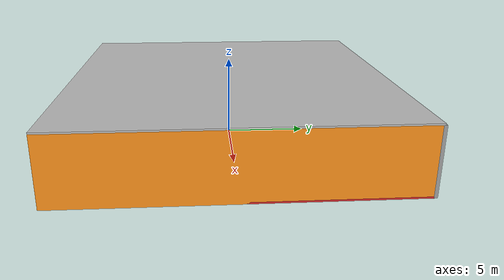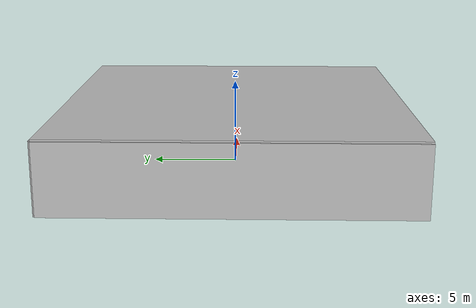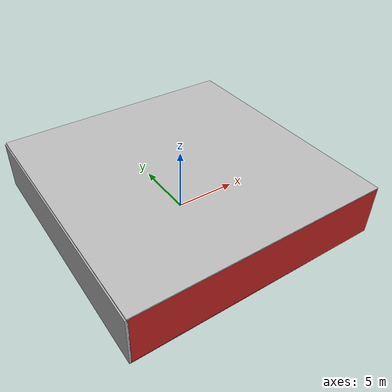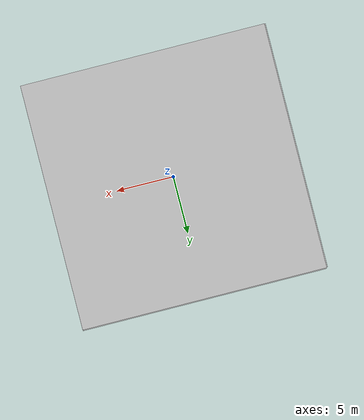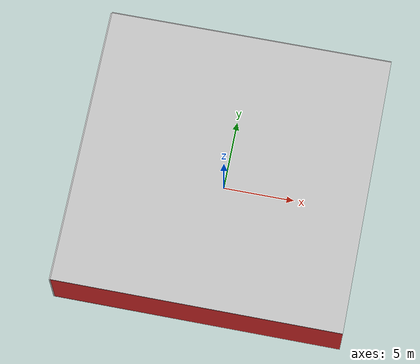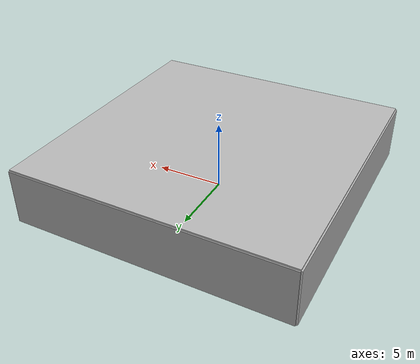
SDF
<sdf version="1.4">
 <world name="default">
  <physics type="ode">
   <max_step_size>0.001</max_step_size>
   <real_time_factor>1</real_time_factor>
   <real_time_update_rate>1000</real_time_update_rate>
   <gravity>0 0 -9.8</gravity>
  </physics>
  <scene><ambient>0.4 0.4 0.4 1</ambient><background>0.7 0.7 0.7 1</background><shadows>1</shadows></scene>
  <model name="Surrounding">
   <static>1</static>
   <link name="Ceiling">
    <collision name="Ceiling_Collision"><geometry><box><size>20 20 0.1</size></box></geometry></collision>
    <visual name="Ceiling_Visual">
     <geometry><box><size>20 20 0.1</size></box></geometry>
     <material>
      <script><uri>file://media/materials/scripts/gazebo.material</uri><name>Gazebo/LightOn</name></script>
     </material>
    </visual>
    <pose>0 0 4.05 0 0 0</pose>
   </link>
   <link name="Wall_South">
    <collision name="Wall_South_Collision">
     <geometry><box><size>20 0 4</size></box></geometry>
     <pose>0 0 2 0 -0 0</pose>
    </collision>
    <visual name="Wall_South_Visual">
     <pose>0 0 2 0 -0 0</pose>
     <geometry><box><size>20 0 4</size></box></geometry>
     <material>
      <script><uri>file://media/materials/scripts/gazebo.material</uri><name>Gazebo/Red</name></script>
     </material>
    </visual>
    <velocity_decay><linear>0</linear><angular>0</angular></velocity_decay>
    <pose>0 -10 0 0 -0 0</pose>
   </link>
   <link name="Wall_East">
    <collision name="Wall_21_Collision">
     <geometry><box><size>20 0 4</size></box></geometry>
     <pose>0 0 2 0 -0 0</pose>
    </collision>
    <visual name="Wall_21_Visual">
     <pose>0 0 2 0 -0 0</pose>
     <geometry><box><size>20 0 4</size></box></geometry>
     <material>
      <script><uri>file://media/materials/scripts/gazebo.material</uri><name>Gazebo/Orange</name></script>
     </material>
    </visual>
    <velocity_decay><linear>0</linear><angular>0</angular></velocity_decay>
    <pose>10 0 0 0 -0 1.5708</pose>
   </link>
   <link name="Wall_North">
    <collision name="Wall_22_Collision">
     <geometry><box><size>20 0.2 4</size></box></geometry>
     <pose>0 0 2 0 -0 0</pose>
    </collision>
    <visual name="Wall_22_Visual">
     <pose>0 0 2 0 -0 0</pose>
     <geometry><box><size>20 0.2 4</size></box></geometry>
     <material>
      <script><uri>file://media/materials/scripts/gazebo.material</uri><name>Gazebo/Grey</name></script>
     </material>
    </visual>
    <velocity_decay><linear>0</linear><angular>0</angular></velocity_decay>
    <pose>0 10 0 0 -0 0</pose>
   </link>
   <link name="Wall_West">
    <collision name="Wall_23_Collision">
     <geometry><box><size>20 0.2 4</size></box></geometry>
     <pose>0 0 2 0 -0 0</pose>
    </collision>
    <visual name="Wall_23_Visual">
     <pose>0 0 2 0 -0 0</pose>
     <geometry><box><size>20 0.2 4</size></box></geometry>
     <material>
      <script><uri>file://media/materials/scripts/gazebo.material</uri><name>Gazebo/LightOn</name></script>
     </material>
    </visual>
    <velocity_decay><linear>0</linear><angular>0</angular></velocity_decay>
    <pose>-10 0 0 0 0 -1.5708</pose>
   </link>
   <link name="Ground_link">
    <collision name="collision">
     <pose>0 0 .05 0 -0 0</pose>
     <geometry><box><size>20 20 0.1</size></box></geometry>
    </collision>
    <visual name="visual">
     <pose>0 0 .05 0 -0 0</pose>
     <geometry><box><size>20 20 0.1</size></box></geometry>
     <material>
      <script><uri>file://media/materials/scripts/gazebo.material</uri><name>Gazebo/RedGlow</name></script>
     </material>
    </visual>
   </link>
   <static>1</static>
  </model>
  <spherical_coordinates>
   <surface_model>EARTH_WGS84</surface_model>
   <latitude_deg>0</latitude_deg>
   <longitude_deg>0</longitude_deg>
   <elevation>0</elevation>
   <heading_deg>0</heading_deg>
  </spherical_coordinates>
  <light name="lightball_0" type="diffuse">
   <diffuse>0.8 0.8 0.8 1</diffuse>
   <specular>0.2 0.2 0.2 1</specular>
   <attenuation>
    <range>100</range>
    <constant>0.7</constant>
    <linear>0.01</linear>
    <quadratic>0.001</quadratic>
   </attenuation>
   <direction>-0.5 0.1 -0.9</direction>
   <pose>5.10927194945 -7.75740548724 3.68898118029 0 0 0</pose>
  </light>
  <light name="lightball_1" type="diffuse">
   <diffuse>0.8 0.8 0.8 1</diffuse>
   <specular>0.2 0.2 0.2 1</specular>
   <attenuation>
    <range>100</range>
    <constant>0.7</constant>
    <linear>0.01</linear>
    <quadratic>0.001</quadratic>
   </attenuation>
   <direction>-0.5 0.1 -0.9</direction>
   <pose>6.98634027783 0.476951416857 3.02769578444 0 0 0</pose>
  </light>
  <light name="lightball_2" type="diffuse">
   <diffuse>0.8 0.8 0.8 1</diffuse>
   <specular>0.2 0.2 0.2 1</specular>
   <attenuation>
    <range>100</range>
    <constant>0.7</constant>
    <linear>0.01</linear>
    <quadratic>0.001</quadratic>
   </attenuation>
   <direction>-0.5 0.1 -0.9</direction>
   <pose>-9.87593311672 2.6676592323 0.751322699709 0 0 0</pose>
  </light>
  <light name="lightball_3" type="diffuse">
   <diffuse>0.8 0.8 0.8 1</diffuse>
   <specular>0.2 0.2 0.2 1</specular>
   <attenuation>
    <range>100</range>
    <constant>0.7</constant>
    <linear>0.01</linear>
    <quadratic>0.001</quadratic>
   </attenuation>
   <direction>-0.5 0.1 -0.9</direction>
   <pose>-4.86269471952 1.7562759766 3.65999648719 0 0 0</pose>
  </light>
  <light name="lightball_4" type="diffuse">
   <diffuse>0.8 0.8 0.8 1</diffuse>
   <specular>0.2 0.2 0.2 1</specular>
   <attenuation>
    <range>100</range>
    <constant>0.7</constant>
    <linear>0.01</linear>
    <quadratic>0.001</quadratic>
   </attenuation>
   <direction>-0.5 0.1 -0.9</direction>
   <pose>-5.27172104605 8.59719815751 1.40184834599 0 0 0</pose>
  </light>
  <light name="lightball_5" type="diffuse">
   <diffuse>0.8 0.8 0.8 1</diffuse>
   <specular>0.2 0.2 0.2 1</specular>
   <attenuation>
    <range>100</range>
    <constant>0.7</constant>
    <linear>0.01</linear>
    <quadratic>0.001</quadratic>
   </attenuation>
   <direction>-0.5 0.1 -0.9</direction>
   <pose>5.27387247187 6.8887592334 0.758737745735 0 0 0</pose>
  </light>
  <light name="lightball_6" type="diffuse">
   <diffuse>0.8 0.8 0.8 1</diffuse>
   <specular>0.2 0.2 0.2 1</specular>
   <attenuation>
    <range>100</range>
    <constant>0.7</constant>
    <linear>0.01</linear>
    <quadratic>0.001</quadratic>
   </attenuation>
   <direction>-0.5 0.1 -0.9</direction>
   <pose>-5.07042704675 0.561862707396 1.87985729875 0 0 0</pose>
  </light>
  <light name="lightball_7" type="diffuse">
   <diffuse>0.8 0.8 0.8 1</diffuse>
   <specular>0.2 0.2 0.2 1</specular>
   <attenuation>
    <range>100</range>
    <constant>0.7</constant>
    <linear>0.01</linear>
    <quadratic>0.001</quadratic>
   </attenuation>
   <direction>-0.5 0.1 -0.9</direction>
   <pose>-8.17996458311 -0.584195672436 1.34465743659 0 0 0</pose>
  </light>
  <light name="lightball_8" type="diffuse">
   <diffuse>0.8 0.8 0.8 1</diffuse>
   <specular>0.2 0.2 0.2 1</specular>
   <attenuation>
    <range>100</range>
    <constant>0.7</constant>
    <linear>0.01</linear>
    <quadratic>0.001</quadratic>
   </attenuation>
   <direction>-0.5 0.1 -0.9</direction>
   <pose>-9.29921053376 8.17778726686 2.1797696656 0 0 0</pose>
  </light>
  <light name="lightball_9" type="diffuse">
   <diffuse>0.8 0.8 0.8 1</diffuse>
   <specular>0.2 0.2 0.2 1</specular>
   <attenuation>
    <range>100</range>
    <constant>0.7</constant>
    <linear>0.01</linear>
    <quadratic>0.001</quadratic>
   </attenuation>
   <direction>-0.5 0.1 -0.9</direction>
   <pose>2.57540998146 2.50886626501 1.13648175656 0 0 0</pose>
  </light>
  <include><uri>model://cabinet</uri><pose>4.63477816831 1.21381853826 0 0 0 0.543054679405</pose></include>
 </world>
</sdf>

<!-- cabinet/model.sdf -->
<sdf version="1.5">
  <model name="cabinet">
    <static>true</static>
    <link name="cabinet_bottom_plate">
      <inertial>
        <pose>0 0 -1 0 0 0</pose>
        <inertia>
          <ixx>2.050000</ixx>
          <ixy>0</ixy>
          <ixz>0</ixz>
          <iyy>2.050000</iyy>
          <iyz>0</iyz>
          <izz>2.050000</izz>
        </inertia>
        <mass>25.000000</mass>
      </inertial>
      <collision name="cabinet_bottom_plate_geom">
        <pose>0 0 0.010000 0 0 0</pose>
        <geometry>
          <box>
            <size>0.450000 0.450000 0.020000</size>
          </box>
        </geometry>
      </collision>
      <visual name="cabinet_bottom_plate_geom_visual">
        <pose>0 0 0.010000 0 0 0</pose>
        <geometry>
          <box>
            <size>0.450000 0.450000 0.020000</size>
          </box>
        </geometry>
        <material>
          <script>
            <uri>model://media/materials/scripts/gazebo.material</uri>
            <name>Gazebo/Wood</name>
          </script>
        </material>
      </visual>
      <collision name="cabinet_bottom_plate_geom_cabinet_back_plate">
        <pose>0.235000 0 0.510000 0 0 0</pose>
        <geometry>
          <box>
            <size>0.020000 0.450000 1.020000</size>
          </box>
        </geometry>
      </collision>
      <visual name="cabinet_bottom_plate_geom_cabinet_back_plate_visual">
        <pose>0.235000 0 0.510000 0 0 0</pose>
        <geometry>
          <box>
            <size>0.020000 0.450000 1.020000</size>
          </box>
        </geometry>
        <material>
          <script>
            <uri>model://media/materials/scripts/gazebo.material</uri>
            <name>Gazebo/Wood</name>
          </script>
        </material>
      </visual>
      <collision name="cabinet_bottom_plate_geom_cabinet_left_plate">
        <pose>0 0.235000 0.510000 0 0 0</pose>
        <geometry>
          <box>
            <size>0.450000 0.020000 1.020000</size>
          </box>
        </geometry>
      </collision>
      <visual name="cabinet_bottom_plate_geom_cabinet_left_plate_visual">
        <pose>0 0.235000 0.510000 0 0 0</pose>
        <geometry>
          <box>
            <size>0.450000 0.020000 1.020000</size>
          </box>
        </geometry>
        <material>
          <script>
            <uri>model://media/materials/scripts/gazebo.material</uri>
            <name>Gazebo/Wood</name>
          </script>
        </material>
      </visual>
      <collision name="cabinet_bottom_plate_geom_cabinet_middle_plate">
        <pose>0 0 0.510000 0 0 0</pose>
        <geometry>
          <box>
            <size>0.450000 0.450000 0.020000</size>
          </box>
        </geometry>
      </collision>
      <visual name="cabinet_bottom_plate_geom_cabinet_middle_plate_visual">
        <pose>0 0 0.510000 0 0 0</pose>
        <geometry>
          <box>
            <size>0.450000 0.450000 0.020000</size>
          </box>
        </geometry>
        <material>
          <script>
            <uri>model://media/materials/scripts/gazebo.material</uri>
            <name>Gazebo/Wood</name>
          </script>
        </material>
      </visual>
      <collision name="cabinet_bottom_plate_geom_cabinet_right_plate">
        <pose>0 -0.235000 0.510000 0 0 0</pose>
        <geometry>
          <box>
            <size>0.450000 0.020000 1.020000</size>
          </box>
        </geometry>
      </collision>
      <visual name="cabinet_bottom_plate_geom_cabinet_right_plate_visual">
        <pose>0 -0.235000 0.510000 0 0 0</pose>
        <geometry>
          <box>
            <size>0.450000 0.020000 1.020000</size>
          </box>
        </geometry>
        <material>
          <script>
            <uri>model://media/materials/scripts/gazebo.material</uri>
            <name>Gazebo/Wood</name>
          </script>
        </material>
      </visual>
      <collision name="cabinet_bottom_plate_geom_cabinet_top_plate">
        <pose>0 0 1.010000 0 0 0</pose>
        <geometry>
          <box>
            <size>0.450000 0.450000 0.020000</size>
          </box>
        </geometry>
      </collision>
      <visual name="cabinet_bottom_plate_geom_cabinet_top_plate_visual">
        <pose>0 0 1.010000 0 0 0</pose>
        <geometry>
          <box>
            <size>0.450000 0.450000 0.020000</size>
          </box>
        </geometry>
        <material>
          <script>
            <uri>model://media/materials/scripts/gazebo.material</uri>
            <name>Gazebo/Wood</name>
          </script>
        </material>
      </visual>
    </link>
  </model>
</sdf>
